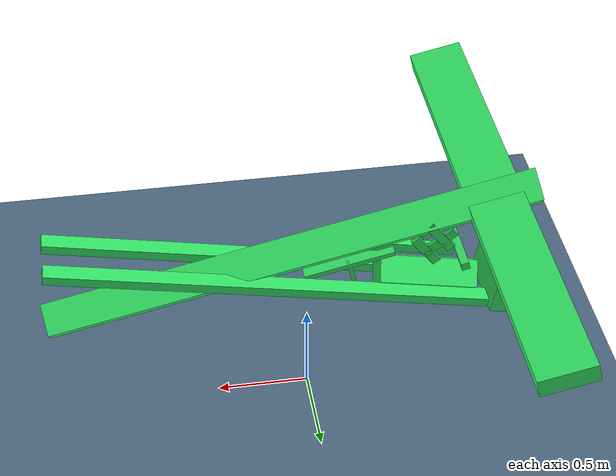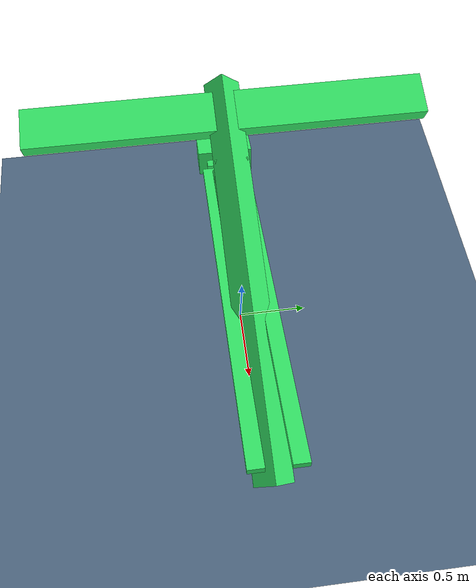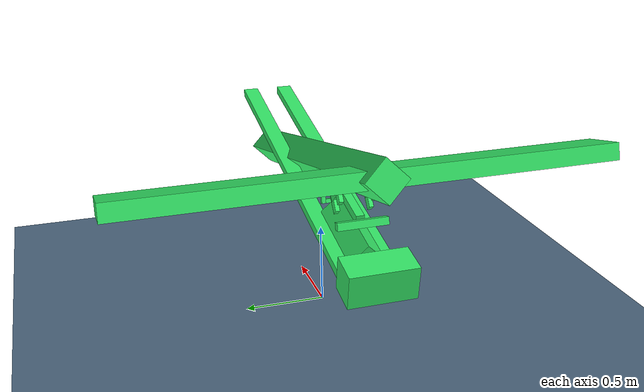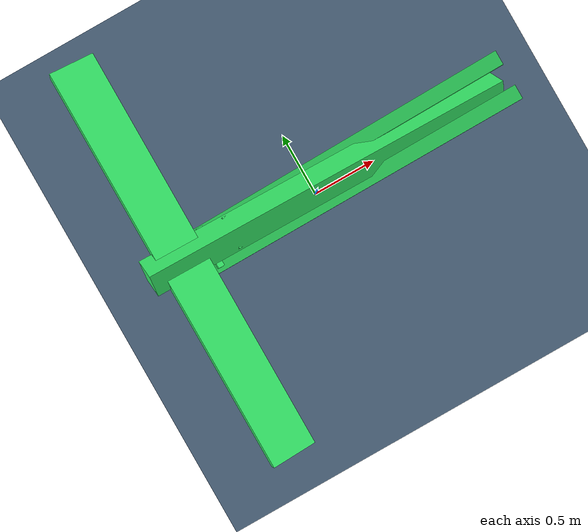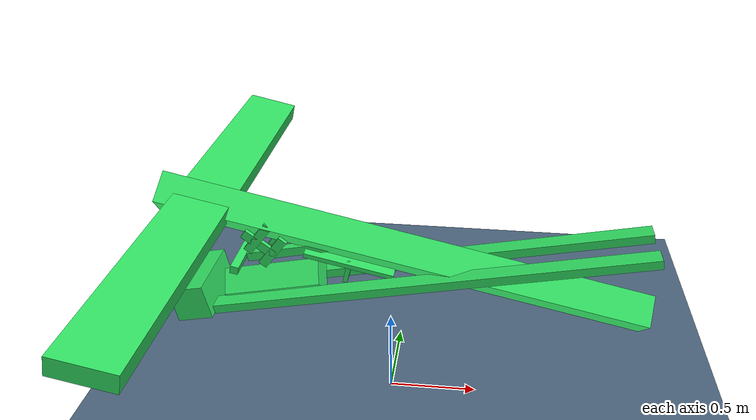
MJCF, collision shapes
<mujoco model="uav_rail_scene">
  <!-- ==============================================
       Compiler & Options
       ============================================== -->
  <compiler angle="degree" eulerseq="xyz" meshdir="/home/heinz/isaaclab_uav/assets" />
  <option timestep="0.005" gravity="0 0 -9.81" impratio="20" tolerance="1e-8" ls_tolerance="1e-8" noslip_tolerance="1e-8">
    <flag contact="enable" />
  </option>
  <!-- Soft contacts — damped collisions between rigid bodies.
       Cart stays non-collidable (contype=0 on its geoms) since the
       prismatic joint already handles its motion along the rail.    -->
  <contact>
    <pair condim="3" friction="0.5 0.3 0.1" geom1="ground" geom2="shahed_col_001" solimp="0.95 0.99 0.001 0.5 2" solref="0.01 0.9" name="uav_ground_p0" />
    <pair condim="3" friction="0.5 0.3 0.1" geom1="ground" geom2="shahed_col_002" solimp="0.95 0.99 0.001 0.5 2" solref="0.01 0.9" name="uav_ground_p1" />
    <pair condim="3" friction="0.5 0.3 0.1" geom1="ground" geom2="shahed_col_003" solimp="0.95 0.99 0.001 0.5 2" solref="0.01 0.9" name="uav_ground_p2" />
    <pair condim="3" friction="0.5 0.3 0.1" geom1="ground" geom2="shahed_col_004" solimp="0.95 0.99 0.001 0.5 2" solref="0.01 0.9" name="uav_ground_p3" />
    <pair condim="3" friction="0.5 0.3 0.1" geom1="ground" geom2="shahed_col_005" solimp="0.95 0.99 0.001 0.5 2" solref="0.01 0.9" name="uav_ground_p4" />
    <pair condim="3" friction="0.5 0.3 0.1" geom1="ground" geom2="shahed_col_006" solimp="0.95 0.99 0.001 0.5 2" solref="0.01 0.9" name="uav_ground_p5" />
    <pair condim="3" friction="0.5 0.3 0.1" geom1="ground" geom2="shahed_col_007" solimp="0.95 0.99 0.001 0.5 2" solref="0.01 0.9" name="uav_ground_p6" />
    <pair condim="3" friction="0.5 0.3 0.1" geom1="ground" geom2="shahed_col_008" solimp="0.95 0.99 0.001 0.5 2" solref="0.01 0.9" name="uav_ground_p7" />
    <pair condim="3" friction="0.5 0.3 0.1" geom1="ground" geom2="shahed_col_009" solimp="0.95 0.99 0.001 0.5 2" solref="0.01 0.9" name="uav_ground_p8" />
    <pair condim="3" friction="0.5 0.3 0.1" geom1="ground" geom2="shahed_col_010" solimp="0.95 0.99 0.001 0.5 2" solref="0.01 0.9" name="uav_ground_p9" />
    <pair condim="3" friction="0.5 0.3 0.1" geom1="ground" geom2="shahed_col_011" solimp="0.95 0.99 0.001 0.5 2" solref="0.01 0.9" name="uav_ground_p10" />
    <pair condim="3" friction="0.5 0.3 0.1" geom1="ground" geom2="shahed_col_012" solimp="0.95 0.99 0.001 0.5 2" solref="0.01 0.9" name="uav_ground_p11" />
    <pair condim="3" friction="0 0 0" geom1="cart_col_001" geom2="shahed_col_001" solimp="0.95 0.99 0.001 0.5 2" solref="0.01 0.9" name="uav_cart_p0" />
    <pair condim="3" friction="0 0 0" geom1="cart_col_001" geom2="shahed_col_002" solimp="0.95 0.99 0.001 0.5 2" solref="0.01 0.9" name="uav_cart_p1" />
    <pair condim="3" friction="0 0 0" geom1="cart_col_001" geom2="shahed_col_003" solimp="0.95 0.99 0.001 0.5 2" solref="0.01 0.9" name="uav_cart_p2" />
    <pair condim="3" friction="0 0 0" geom1="cart_col_001" geom2="shahed_col_004" solimp="0.95 0.99 0.001 0.5 2" solref="0.01 0.9" name="uav_cart_p3" />
    <pair condim="3" friction="0 0 0" geom1="cart_col_001" geom2="shahed_col_005" solimp="0.95 0.99 0.001 0.5 2" solref="0.01 0.9" name="uav_cart_p4" />
    <pair condim="3" friction="0 0 0" geom1="cart_col_001" geom2="shahed_col_006" solimp="0.95 0.99 0.001 0.5 2" solref="0.01 0.9" name="uav_cart_p5" />
    <pair condim="3" friction="0 0 0" geom1="cart_col_001" geom2="shahed_col_007" solimp="0.95 0.99 0.001 0.5 2" solref="0.01 0.9" name="uav_cart_p6" />
    <pair condim="3" friction="0 0 0" geom1="cart_col_001" geom2="shahed_col_008" solimp="0.95 0.99 0.001 0.5 2" solref="0.01 0.9" name="uav_cart_p7" />
    <pair condim="3" friction="0 0 0" geom1="cart_col_001" geom2="shahed_col_009" solimp="0.95 0.99 0.001 0.5 2" solref="0.01 0.9" name="uav_cart_p8" />
    <pair condim="3" friction="0 0 0" geom1="cart_col_001" geom2="shahed_col_010" solimp="0.95 0.99 0.001 0.5 2" solref="0.01 0.9" name="uav_cart_p9" />
    <pair condim="3" friction="0 0 0" geom1="cart_col_001" geom2="shahed_col_011" solimp="0.95 0.99 0.001 0.5 2" solref="0.01 0.9" name="uav_cart_p10" />
    <pair condim="3" friction="0 0 0" geom1="cart_col_001" geom2="shahed_col_012" solimp="0.95 0.99 0.001 0.5 2" solref="0.01 0.9" name="uav_cart_p11" />
    <pair condim="3" friction="0 0 0" geom1="cart_col_002" geom2="shahed_col_001" solimp="0.95 0.99 0.001 0.5 2" solref="0.01 0.9" name="uav_cart_p12" />
    <pair condim="3" friction="0 0 0" geom1="cart_col_002" geom2="shahed_col_002" solimp="0.95 0.99 0.001 0.5 2" solref="0.01 0.9" name="uav_cart_p13" />
    <pair condim="3" friction="0 0 0" geom1="cart_col_002" geom2="shahed_col_003" solimp="0.95 0.99 0.001 0.5 2" solref="0.01 0.9" name="uav_cart_p14" />
    <pair condim="3" friction="0 0 0" geom1="cart_col_002" geom2="shahed_col_004" solimp="0.95 0.99 0.001 0.5 2" solref="0.01 0.9" name="uav_cart_p15" />
    <pair condim="3" friction="0 0 0" geom1="cart_col_002" geom2="shahed_col_005" solimp="0.95 0.99 0.001 0.5 2" solref="0.01 0.9" name="uav_cart_p16" />
    <pair condim="3" friction="0 0 0" geom1="cart_col_002" geom2="shahed_col_006" solimp="0.95 0.99 0.001 0.5 2" solref="0.01 0.9" name="uav_cart_p17" />
    <pair condim="3" friction="0 0 0" geom1="cart_col_002" geom2="shahed_col_007" solimp="0.95 0.99 0.001 0.5 2" solref="0.01 0.9" name="uav_cart_p18" />
    <pair condim="3" friction="0 0 0" geom1="cart_col_002" geom2="shahed_col_008" solimp="0.95 0.99 0.001 0.5 2" solref="0.01 0.9" name="uav_cart_p19" />
    <pair condim="3" friction="0 0 0" geom1="cart_col_002" geom2="shahed_col_009" solimp="0.95 0.99 0.001 0.5 2" solref="0.01 0.9" name="uav_cart_p20" />
    <pair condim="3" friction="0 0 0" geom1="cart_col_002" geom2="shahed_col_010" solimp="0.95 0.99 0.001 0.5 2" solref="0.01 0.9" name="uav_cart_p21" />
    <pair condim="3" friction="0 0 0" geom1="cart_col_002" geom2="shahed_col_011" solimp="0.95 0.99 0.001 0.5 2" solref="0.01 0.9" name="uav_cart_p22" />
    <pair condim="3" friction="0 0 0" geom1="cart_col_002" geom2="shahed_col_012" solimp="0.95 0.99 0.001 0.5 2" solref="0.01 0.9" name="uav_cart_p23" />
    <pair condim="3" friction="0 0 0" geom1="cart_col_011" geom2="shahed_col_001" solimp="0.95 0.99 0.001 0.5 2" solref="0.01 0.9" name="uav_cart_p24" />
    <pair condim="3" friction="0 0 0" geom1="cart_col_011" geom2="shahed_col_002" solimp="0.95 0.99 0.001 0.5 2" solref="0.01 0.9" name="uav_cart_p25" />
    <pair condim="3" friction="0 0 0" geom1="cart_col_011" geom2="shahed_col_003" solimp="0.95 0.99 0.001 0.5 2" solref="0.01 0.9" name="uav_cart_p26" />
    <pair condim="3" friction="0 0 0" geom1="cart_col_011" geom2="shahed_col_004" solimp="0.95 0.99 0.001 0.5 2" solref="0.01 0.9" name="uav_cart_p27" />
    <pair condim="3" friction="0 0 0" geom1="cart_col_011" geom2="shahed_col_005" solimp="0.95 0.99 0.001 0.5 2" solref="0.01 0.9" name="uav_cart_p28" />
    <pair condim="3" friction="0 0 0" geom1="cart_col_011" geom2="shahed_col_006" solimp="0.95 0.99 0.001 0.5 2" solref="0.01 0.9" name="uav_cart_p29" />
    <pair condim="3" friction="0 0 0" geom1="cart_col_011" geom2="shahed_col_007" solimp="0.95 0.99 0.001 0.5 2" solref="0.01 0.9" name="uav_cart_p30" />
    <pair condim="3" friction="0 0 0" geom1="cart_col_011" geom2="shahed_col_008" solimp="0.95 0.99 0.001 0.5 2" solref="0.01 0.9" name="uav_cart_p31" />
    <pair condim="3" friction="0 0 0" geom1="cart_col_011" geom2="shahed_col_009" solimp="0.95 0.99 0.001 0.5 2" solref="0.01 0.9" name="uav_cart_p32" />
    <pair condim="3" friction="0 0 0" geom1="cart_col_011" geom2="shahed_col_010" solimp="0.95 0.99 0.001 0.5 2" solref="0.01 0.9" name="uav_cart_p33" />
    <pair condim="3" friction="0 0 0" geom1="cart_col_011" geom2="shahed_col_011" solimp="0.95 0.99 0.001 0.5 2" solref="0.01 0.9" name="uav_cart_p34" />
    <pair condim="3" friction="0 0 0" geom1="cart_col_011" geom2="shahed_col_012" solimp="0.95 0.99 0.001 0.5 2" solref="0.01 0.9" name="uav_cart_p35" />
  </contact>
  <visual>
    <map stiffness="1000" fogstart="10" fogend="80" />
    <quality shadowsize="2048" />
    <headlight diffuse="0.6 0.6 0.6" ambient="0.3 0.3 0.3" />
  </visual>
  <!-- ==============================================
       Assets: Meshes
       ============================================== -->
  <asset>
    <!-- UAV collision/visual mesh -->
    <mesh name="uav_mesh" file="shahed-136/source/shahed_collision_2.stl" />
    <!-- Rail structure mesh -->
    <mesh name="rail_mesh" file="shahed-136/source/rail_collision.stl" />
    <!-- Launch cart mesh -->
    <mesh name="cart_mesh" file="shahed-136/source/launch_cart.stl" />
  </asset>
  <!-- ==============================================
       World Body
       ============================================== -->
  <worldbody>
    <!-- Ground plane (infinite flat plane at z=0) -->
    <geom name="ground" type="plane" size="50 50 0.1" pos="0 0 0" rgba="0.3 0.4 0.5 1" />
    <!-- Lighting -->
    <light directional="true" diffuse="0.8 0.8 0.8" specular="0.2 0.2 0.2" pos="5 5 10" dir="-0.5 -0.5 -1" />
    <body name="base_link" pos="0 0 0" quat="1 0 0 0">
      <geom name="base_geom" type="mesh" mesh="rail_mesh" rgba="0.25 0.30 0.35 0.25" density="0" contype="0" conaffinity="0" />
      <!-- rail.Cube.001 (box) -->
      <geom name="rail_col_001" type="box" size="0.1 0.2 0.1" pos="-1.09 0 0.64" quat="0.77301 0 0.634393 0" density="0" rgba="0.2 0.9 0.4 0.35" group="0" />
      <!-- rail.Cube.011 (box) -->
      <geom name="rail_col_011" type="box" size="0.025 0.05 1.2" pos="0.21 -0.125 0.83" quat="0.77301 0 0.634393 0" density="0" rgba="0.2 0.9 0.4 0.35" group="0" />
      <!-- rail.Cube.012 (box) -->
      <geom name="rail_col_012" type="box" size="0.025 0.05 1.2" pos="0.21 0.125 0.83" quat="0.77301 0 0.634393 0" density="0" rgba="0.2 0.9 0.4 0.35" group="0" />
      <!-- Tilted intermediate body — provides the inclined joint frame.
           euler="0 -78.5 0" → local +X ≈ (0.20, 0, 0.98) in world (upward) -->
      <body name="rail_link" pos="-0.65 0 0.71" euler="0 -11.5 0">
        <!-- Launch cart — slides along rail_link's local +X                 -->
        <body name="launch_cart" pos="0 0 0" euler="0 0 0">
          <joint name="rail_joint" type="slide" axis="1 0 0" limited="true" range="0 2" damping="5" stiffness="10" armature="0.01" />
          <inertial pos="0 0 0" mass="5" diaginertia="0.05 0.05 0.02" />
          <!-- Cart — collides with UAV + rail. Joint constraint keeps it
               on track; soft contacts prevent jamming.                       -->
          <geom name="cart_geom" type="mesh" mesh="cart_mesh" rgba="1.0 0.4 0.1 1" density="0" contype="0" conaffinity="0" group="1" />
          <!-- cart.Cube.001 (box) -->
          <geom name="cart_col_001" type="box" size="0.0225 0.15 0.0225" pos="-0.15 0 0.175" quat="0.976296 0 0.21644 0" density="0" rgba="0.2 0.9 0.4 0.35" group="0" />
          <!-- cart.Cube.002 (box) -->
          <geom name="cart_col_002" type="box" size="0.275 0.075 0.075" pos="1.49012e-08 0 0" quat="0.92388 0.382683 0 0" density="0" rgba="0.2 0.9 0.4 0.35" group="0" />
          <!-- cart.Cube.011 (box) -->
          <geom name="cart_col_011" type="box" size="0.25 0.025 0.025" pos="0.14 0 0.175" density="0" rgba="0.2 0.9 0.4 0.35" group="0" />
        </body>
      </body>
    </body>
    <body name="uav" pos="-0.2 0 1.00" euler="0 12.8 0">
      <!-- 6-DoF free joint -->
      <joint name="uav_joint" type="free" />
      <!-- Inertial: mass=200 kg, inertia from URDF -->
      <inertial pos="0 0 0" mass="200" diaginertia="40 40 20" />
      <!-- UAV — full collision with everything (default contype/affinity).  -->
      <geom name="uav_body" type="mesh" mesh="uav_mesh" rgba="0.6 0.6 0.65 1" density="0" contype="0" conaffinity="0" group="1" />
      <!-- shahed.Cube.001 (box) -->
      <geom name="shahed_col_001" type="box" size="0.0125 0.0125 0.0625" pos="0.01 0.05 -0.18" density="0" rgba="0.2 0.9 0.4 0.35" group="0" />
      <!-- shahed.Cube.002 (box) -->
      <geom name="shahed_col_002" type="box" size="0.25 0.075 0.0125" pos="0.01 0 -0.13" density="0" rgba="0.2 0.9 0.4 0.35" group="0" />
      <!-- shahed.Cube.003 (box) -->
      <geom name="shahed_col_003" type="box" size="0.0125 0.0375 0.0125" pos="0.01 0 -0.23" density="0" rgba="0.2 0.9 0.4 0.35" group="0" />
      <!-- shahed.Cube.004 (box) -->
      <geom name="shahed_col_004" type="box" size="0.025 0.0125 0.1" pos="-0.4 0.1 -0.14" quat="0.976296 0 0.21644 0" density="0" rgba="0.2 0.9 0.4 0.35" group="0" />
      <!-- shahed.Cube.005 (box) -->
      <geom name="shahed_col_005" type="box" size="0.025 0.0125 0.1" pos="-0.49 0.1 -0.077" quat="0.976296 0 0.21644 0" density="0" rgba="0.2 0.9 0.4 0.35" group="0" />
      <!-- shahed.Cube.006 (box) -->
      <geom name="shahed_col_006" type="box" size="0.025 0.0125 0.1" pos="-0.48 -0.1 -0.11" quat="0.5373 0 0.843391 0" density="0" rgba="0.2 0.9 0.4 0.35" group="0" />
      <!-- shahed.Cube.007 (box) -->
      <geom name="shahed_col_007" type="box" size="0.025 0.0125 0.1" pos="-0.48 0.1 -0.11" quat="0.5373 0 0.843391 0" density="0" rgba="0.2 0.9 0.4 0.35" group="0" />
      <!-- shahed.Cube.008 (box) -->
      <geom name="shahed_col_008" type="box" size="0.025 0.0125 0.1" pos="-0.49 -0.1 -0.077" quat="0.976296 0 0.21644 0" density="0" rgba="0.2 0.9 0.4 0.35" group="0" />
      <!-- shahed.Cube.009 (box) -->
      <geom name="shahed_col_009" type="box" size="0.025 0.0125 0.1" pos="-0.4 -0.1 -0.14" quat="0.976296 0 0.21644 0" density="0" rgba="0.2 0.9 0.4 0.35" group="0" />
      <!-- shahed.Cube.010 (box) -->
      <geom name="shahed_col_010" type="box" size="0.0125 0.0125 0.0625" pos="0.01 -0.05 -0.18" density="0" rgba="0.2 0.9 0.4 0.35" group="0" />
      <!-- shahed.Cube.011 (box) -->
      <geom name="shahed_col_011" type="box" size="0.15 1.4 0.05" pos="-0.82 0 0" density="0" rgba="0.2 0.9 0.4 0.35" group="0" />
      <!-- shahed.Cube.012 (box) -->
      <geom name="shahed_col_012" type="box" size="1.35 0.0875 0.0875" pos="0.29 0 0" quat="0.92388 0.382683 0 0" density="0" rgba="0.2 0.9 0.4 0.35" group="0" />
    </body>
  </worldbody>
  <!-- ==============================================
       Equality: launch cradle
       ============================================== -->
  <equality>
    <weld name="uav_cradle" body1="launch_cart" body2="uav" />
  </equality>
  <!-- ==============================================
       Actuators
       ============================================== -->
  <actuator>
    <motor name="rail_motor" joint="rail_joint" gear="1" ctrlrange="-20000 20000" />
  </actuator>
  <!-- ==============================================
       Sensors
       ============================================== -->
  <sensor>
    <!-- UAV body velocity -->
    <framelinvel name="uav_vel" objtype="body" objname="uav" />
    <!-- Rail joint position & velocity -->
    <jointpos name="rail_pos" joint="rail_joint" />
    <jointvel name="rail_vel" joint="rail_joint" />
  </sensor>
</mujoco>
